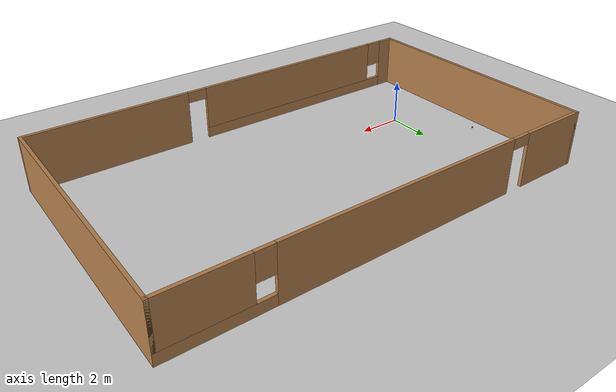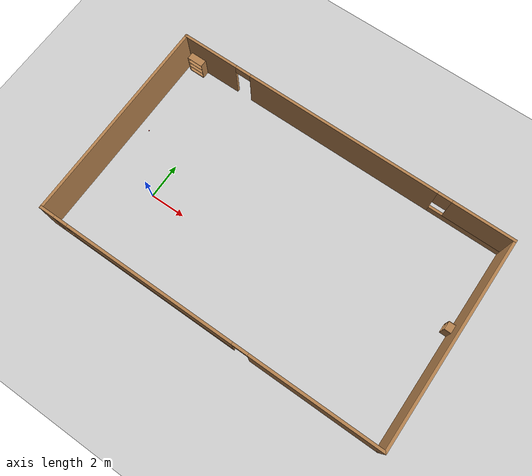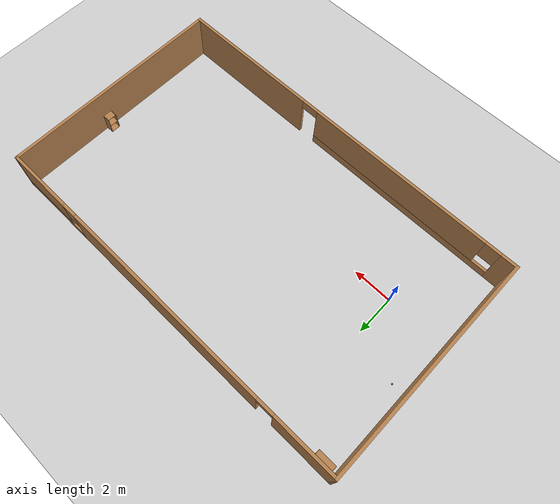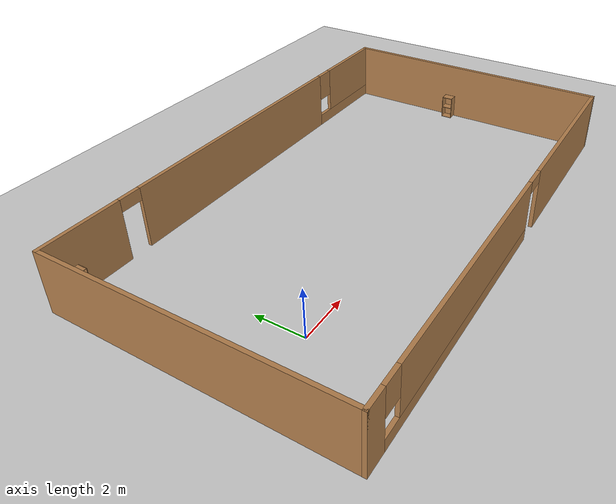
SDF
<sdf version="1.7">
 <world name="default">
  <light name="sun" type="directional">
   <pose>0 0 10 0 -0 0</pose>
   <diffuse>0.8 0.8 0.8 1</diffuse>
   <specular>0.2 0.2 0.2 1</specular>
   <attenuation>
    <range>1000</range>
    <constant>0.9</constant>
    <linear>0.01</linear>
    <quadratic>0.001</quadratic>
   </attenuation>
   <direction>-0.5 0.1 -0.9</direction>
   <spot><inner_angle>0</inner_angle><outer_angle>0</outer_angle><falloff>0</falloff></spot>
  </light>
  <model name="ground_plane">
   <static>1</static>
   <link name="link">
    <collision name="collision">
     <geometry><plane><normal>0 0 1</normal><size>100 100</size></plane></geometry>
     <surface>
      <contact><collide_bitmask>65535</collide_bitmask></contact>
      <friction><ode><mu>100</mu><mu2>50</mu2></ode></friction>
     </surface>
    </collision>
    <visual name="visual">
     <cast_shadows>0</cast_shadows>
     <geometry><plane><normal>0 0 1</normal><size>100 100</size></plane></geometry>
     <material>
      <script><uri>file://media/materials/scripts/gazebo.material</uri><name>Gazebo/Grey</name></script>
     </material>
    </visual>
   </link>
  </model>
  <gravity>0 0 -9.8</gravity>
  <magnetic_field>6e-06 2.3e-05 -4.2e-05</magnetic_field>
  <atmosphere type="adiabatic"/>
  <physics type="ode">
   <max_step_size>0.001</max_step_size>
   <real_time_factor>1</real_time_factor>
   <real_time_update_rate>1000</real_time_update_rate>
  </physics>
  <scene><ambient>0.4 0.4 0.4 1</ambient><background>0.7 0.7 0.7 1</background><shadows>1</shadows></scene>
  <audio><device>default</device></audio>
  <spherical_coordinates>
   <surface_model>EARTH_WGS84</surface_model>
   <latitude_deg>0</latitude_deg>
   <longitude_deg>0</longitude_deg>
   <elevation>0</elevation>
   <heading_deg>0</heading_deg>
  </spherical_coordinates>
  <model name="t1">
   <pose>6.66698 1.8068 0 0 -0 0</pose>
   <link name="Wall_0">
    <collision name="Wall_0_Collision">
     <geometry><box><size>11.75 0.15 2.5</size></box></geometry>
     <pose>0 0 1.25 0 -0 0</pose>
    </collision>
    <visual name="Wall_0_Visual">
     <pose>0 0 1.25 0 -0 0</pose>
     <geometry><box><size>11.75 0.15 2.5</size></box></geometry>
     <material>
      <script><uri>file://media/materials/scripts/gazebo.material</uri><name>Gazebo/Wood</name></script>
      <ambient>1 1 1 1</ambient>
     </material>
     <meta><layer>0</layer></meta>
    </visual>
    <pose>-9.8 0 0 0 -0 1.5708</pose>
   </link>
   <link name="Wall_2">
    <pose>-0 5.8 0 0 -0 0</pose>
    <visual name="Wall_2_Visual_0">
     <pose>-8.22504 0 1.25 0 -0 0</pose>
     <geometry><box><size>3.29991 0.15 2.5</size></box></geometry>
     <material>
      <script><uri>file://media/materials/scripts/gazebo.material</uri><name>Gazebo/Wood</name></script>
      <ambient>1 1 1 1</ambient>
     </material>
     <meta><layer>0</layer></meta>
    </visual>
    <collision name="Wall_2_Collision_0">
     <geometry><box><size>3.29991 0.15 2.5</size></box></geometry>
     <pose>-8.22504 0 1.25 0 -0 0</pose>
    </collision>
    <visual name="Wall_2_Visual_1">
     <pose>-0.066928 0 1.25 0 -0 0</pose>
     <geometry><box><size>11.2163 0.15 2.5</size></box></geometry>
     <material>
      <script><uri>file://media/materials/scripts/gazebo.material</uri><name>Gazebo/Wood</name></script>
      <ambient>1 1 1 1</ambient>
     </material>
     <meta><layer>0</layer></meta>
    </visual>
    <collision name="Wall_2_Collision_1">
     <geometry><box><size>11.2163 0.15 2.5</size></box></geometry>
     <pose>-0.066928 0 1.25 0 -0 0</pose>
    </collision>
    <visual name="Wall_2_Visual_2">
     <pose>5.54123 0 1.25 0 -0 0</pose>
     <geometry><box><size>0 0.15 2.5</size></box></geometry>
     <material>
      <script><uri>file://media/materials/scripts/gazebo.material</uri><name>Gazebo/Wood</name></script>
      <ambient>1 1 1 1</ambient>
     </material>
     <meta><layer>0</layer></meta>
    </visual>
    <collision name="Wall_2_Collision_2">
     <geometry><box><size>0 0.15 2.5</size></box></geometry>
     <pose>5.54123 0 1.25 0 -0 0</pose>
    </collision>
    <visual name="Wall_2_Visual_3">
     <pose>7.70812 0 0.25 0 -0 0</pose>
     <geometry><box><size>4.33377 0.15 0.5</size></box></geometry>
     <material>
      <script><uri>file://media/materials/scripts/gazebo.material</uri><name>Gazebo/Wood</name></script>
      <ambient>1 1 1 1</ambient>
     </material>
     <meta><layer>0</layer></meta>
    </visual>
    <collision name="Wall_2_Collision_3">
     <geometry><box><size>4.33377 0.15 0.5</size></box></geometry>
     <pose>7.70812 0 0.25 0 -0 0</pose>
    </collision>
    <visual name="Wall_2_Visual_4">
     <pose>8.10811 0 1.5 0 -0 0</pose>
     <geometry><box><size>3.53377 0.15 2</size></box></geometry>
     <material>
      <script><uri>file://media/materials/scripts/gazebo.material</uri><name>Gazebo/Wood</name></script>
      <ambient>1 1 1 1</ambient>
     </material>
     <meta><layer>0</layer></meta>
    </visual>
    <collision name="Wall_2_Collision_4">
     <geometry><box><size>3.53377 0.15 2</size></box></geometry>
     <pose>8.10811 0 1.5 0 -0 0</pose>
    </collision>
    <visual name="Wall_2_Visual_5">
     <pose>5.54123 0 1.9 0 -0 0</pose>
     <geometry><box><size>0 0.15 1.2</size></box></geometry>
     <material>
      <script><uri>file://media/materials/scripts/gazebo.material</uri><name>Gazebo/Wood</name></script>
      <ambient>1 1 1 1</ambient>
     </material>
     <meta><layer>0</layer></meta>
    </visual>
    <collision name="Wall_2_Collision_5">
     <geometry><box><size>0 0.15 1.2</size></box></geometry>
     <pose>5.54123 0 1.9 0 -0 0</pose>
    </collision>
    <visual name="Wall_2_Visual_6">
     <pose>5.94123 0 1.9 0 -0 0</pose>
     <geometry><box><size>0.8 0.15 1.2</size></box></geometry>
     <material>
      <script><uri>file://media/materials/scripts/gazebo.material</uri><name>Gazebo/Wood</name></script>
      <ambient>1 1 1 1</ambient>
     </material>
     <meta><layer>0</layer></meta>
    </visual>
    <collision name="Wall_2_Collision_6">
     <geometry><box><size>0.8 0.15 1.2</size></box></geometry>
     <pose>5.94123 0 1.9 0 -0 0</pose>
    </collision>
    <visual name="Wall_2_Visual_7">
     <pose>-6.12509 0 2.25 0 -0 0</pose>
     <geometry><box><size>0.9 0.15 0.5</size></box></geometry>
     <material>
      <script><uri>file://media/materials/scripts/gazebo.material</uri><name>Gazebo/Wood</name></script>
      <ambient>1 1 1 1</ambient>
     </material>
     <meta><layer>0</layer></meta>
    </visual>
    <collision name="Wall_2_Collision_7">
     <geometry><box><size>0.9 0.15 0.5</size></box></geometry>
     <pose>-6.12509 0 2.25 0 -0 0</pose>
    </collision>
   </link>
   <link name="Wall_3">
    <collision name="Wall_3_Collision">
     <geometry><box><size>11.75 0.15 2.5</size></box></geometry>
     <pose>0 0 1.25 0 -0 0</pose>
    </collision>
    <visual name="Wall_3_Visual">
     <pose>0 0 1.25 0 -0 0</pose>
     <geometry><box><size>11.75 0.15 2.5</size></box></geometry>
     <material>
      <script><uri>file://media/materials/scripts/gazebo.material</uri><name>Gazebo/Wood</name></script>
      <ambient>1 1 1 1</ambient>
     </material>
     <meta><layer>0</layer></meta>
    </visual>
    <pose>9.8 0 0 0 -0 -1.5708</pose>
   </link>
   <link name="Wall_5">
    <pose>-0 -5.8 0 0 -0 0</pose>
    <visual name="Wall_5_Visual_0">
     <pose>-9.4313 0 1.25 0 -0 0</pose>
     <geometry><box><size>0.8874 0.15 2.5</size></box></geometry>
     <material>
      <script><uri>file://media/materials/scripts/gazebo.material</uri><name>Gazebo/Wood</name></script>
      <ambient>1 1 1 1</ambient>
     </material>
     <meta><layer>0</layer></meta>
    </visual>
    <collision name="Wall_5_Collision_0">
     <geometry><box><size>0.8874 0.15 2.5</size></box></geometry>
     <pose>-9.4313 0 1.25 0 -0 0</pose>
    </collision>
    <visual name="Wall_5_Visual_1">
     <pose>6.18069 0 1.25 0 -0 0</pose>
     <geometry><box><size>7.38861 0.15 2.5</size></box></geometry>
     <material>
      <script><uri>file://media/materials/scripts/gazebo.material</uri><name>Gazebo/Wood</name></script>
      <ambient>1 1 1 1</ambient>
     </material>
     <meta><layer>0</layer></meta>
    </visual>
    <collision name="Wall_5_Collision_1">
     <geometry><box><size>7.38861 0.15 2.5</size></box></geometry>
     <pose>6.18069 0 1.25 0 -0 0</pose>
    </collision>
    <visual name="Wall_5_Visual_2">
     <pose>-3.70061 0 0.25 0 -0 0</pose>
     <geometry><box><size>10.574 0.15 0.5</size></box></geometry>
     <material>
      <script><uri>file://media/materials/scripts/gazebo.material</uri><name>Gazebo/Wood</name></script>
      <ambient>1 1 1 1</ambient>
     </material>
     <meta><layer>0</layer></meta>
    </visual>
    <collision name="Wall_5_Collision_2">
     <geometry><box><size>10.574 0.15 0.5</size></box></geometry>
     <pose>-3.70061 0 0.25 0 -0 0</pose>
    </collision>
    <visual name="Wall_5_Visual_3">
     <pose>-3.30061 0 1.5 0 -0 0</pose>
     <geometry><box><size>9.77399 0.15 2</size></box></geometry>
     <material>
      <script><uri>file://media/materials/scripts/gazebo.material</uri><name>Gazebo/Wood</name></script>
      <ambient>1 1 1 1</ambient>
     </material>
     <meta><layer>0</layer></meta>
    </visual>
    <collision name="Wall_5_Collision_3">
     <geometry><box><size>9.77399 0.15 2</size></box></geometry>
     <pose>-3.30061 0 1.5 0 -0 0</pose>
    </collision>
    <visual name="Wall_5_Visual_4">
     <pose>-8.5876 0 1.9 0 -0 0</pose>
     <geometry><box><size>0.8 0.15 1.2</size></box></geometry>
     <material>
      <script><uri>file://media/materials/scripts/gazebo.material</uri><name>Gazebo/Wood</name></script>
      <ambient>1 1 1 1</ambient>
     </material>
     <meta><layer>0</layer></meta>
    </visual>
    <collision name="Wall_5_Collision_4">
     <geometry><box><size>0.8 0.15 1.2</size></box></geometry>
     <pose>-8.5876 0 1.9 0 -0 0</pose>
    </collision>
    <visual name="Wall_5_Visual_5">
     <pose>2.03639 0 2.25 0 -0 0</pose>
     <geometry><box><size>0.9 0.15 0.5</size></box></geometry>
     <material>
      <script><uri>file://media/materials/scripts/gazebo.material</uri><name>Gazebo/Wood</name></script>
      <ambient>1 1 1 1</ambient>
     </material>
     <meta><layer>0</layer></meta>
    </visual>
    <collision name="Wall_5_Collision_5">
     <geometry><box><size>0.9 0.15 0.5</size></box></geometry>
     <pose>2.03639 0 2.25 0 -0 0</pose>
    </collision>
   </link>
   <static>1</static>
  </model>
  <model name="bookshelf">
   <static>1</static>
   <link name="link">
    <inertial><mass>1</mass></inertial>
    <collision name="back">
     <pose>0 0.005 0.6 0 -0 0</pose>
     <geometry><box><size>0.9 0.01 1.2</size></box></geometry>
    </collision>
    <visual name="visual1">
     <pose>0 0.005 0.6 0 -0 0</pose>
     <geometry><box><size>0.9 0.01 1.2</size></box></geometry>
     <material>
      <script><uri>file://media/materials/scripts/gazebo.material</uri><name>Gazebo/Wood</name></script>
     </material>
    </visual>
    <collision name="left_side">
     <pose>0.45 -0.195 0.6 0 -0 0</pose>
     <geometry><box><size>0.02 0.4 1.2</size></box></geometry>
    </collision>
    <visual name="visual2">
     <pose>0.45 -0.195 0.6 0 -0 0</pose>
     <geometry><box><size>0.02 0.4 1.2</size></box></geometry>
     <material>
      <script><uri>file://media/materials/scripts/gazebo.material</uri><name>Gazebo/Wood</name></script>
     </material>
    </visual>
    <collision name="right_side">
     <pose>-0.45 -0.195 0.6 0 -0 0</pose>
     <geometry><box><size>0.02 0.4 1.2</size></box></geometry>
    </collision>
    <visual name="visual3">
     <pose>-0.45 -0.195 0.6 0 -0 0</pose>
     <geometry><box><size>0.02 0.4 1.2</size></box></geometry>
     <material>
      <script><uri>file://media/materials/scripts/gazebo.material</uri><name>Gazebo/Wood</name></script>
     </material>
    </visual>
    <collision name="bottom">
     <pose>0 -0.195 0.03 0 -0 0</pose>
     <geometry><box><size>0.88 0.4 0.06</size></box></geometry>
    </collision>
    <visual name="visual4">
     <pose>0 -0.195 0.03 0 -0 0</pose>
     <geometry><box><size>0.88 0.4 0.06</size></box></geometry>
     <material>
      <script><uri>file://media/materials/scripts/gazebo.material</uri><name>Gazebo/Wood</name></script>
     </material>
    </visual>
    <collision name="top">
     <pose>0 -0.195 1.19 0 -0 0</pose>
     <geometry><box><size>0.88 0.4 0.02</size></box></geometry>
    </collision>
    <visual name="visual5">
     <pose>0 -0.195 1.19 0 -0 0</pose>
     <geometry><box><size>0.88 0.4 0.02</size></box></geometry>
     <material>
      <script><uri>file://media/materials/scripts/gazebo.material</uri><name>Gazebo/Wood</name></script>
     </material>
    </visual>
    <collision name="low_shelf">
     <pose>0 -0.195 0.43 0 -0 0</pose>
     <geometry><box><size>0.88 0.4 0.02</size></box></geometry>
    </collision>
    <visual name="visual6">
     <pose>0 -0.195 0.43 0 -0 0</pose>
     <geometry><box><size>0.88 0.4 0.02</size></box></geometry>
     <material>
      <script><uri>file://media/materials/scripts/gazebo.material</uri><name>Gazebo/Wood</name></script>
     </material>
    </visual>
    <collision name="high_shelf">
     <pose>0 -0.195 0.8 0 -0 0</pose>
     <geometry><box><size>0.88 0.4 0.02</size></box></geometry>
    </collision>
    <visual name="visual7">
     <pose>0 -0.195 0.8 0 -0 0</pose>
     <geometry><box><size>0.88 0.4 0.02</size></box></geometry>
     <material>
      <script><uri>file://media/materials/scripts/gazebo.material</uri><name>Gazebo/Wood</name></script>
     </material>
    </visual>
   </link>
   <pose>-2.4402 7.52138 0 0 -0 0</pose>
  </model>
  <model name="cabinet">
   <static>1</static>
   <link name="cabinet_bottom_plate">
    <inertial>
     <pose>0 0 -1 0 -0 0</pose>
     <inertia><ixx>2.05</ixx><ixy>0</ixy><ixz>0</ixz><iyy>2.05</iyy><iyz>0</iyz><izz>2.05</izz></inertia>
     <mass>25</mass>
    </inertial>
    <collision name="cabinet_bottom_plate_geom">
     <pose>0 0 0.01 0 -0 0</pose>
     <geometry><box><size>0.45 0.45 0.02</size></box></geometry>
    </collision>
    <visual name="cabinet_bottom_plate_geom_visual">
     <pose>0 0 0.01 0 -0 0</pose>
     <geometry><box><size>0.45 0.45 0.02</size></box></geometry>
     <material>
      <script><uri>file://media/materials/scripts/gazebo.material</uri><name>Gazebo/Wood</name></script>
     </material>
    </visual>
    <collision name="cabinet_bottom_plate_geom_cabinet_back_plate">
     <pose>0.235 0 0.51 0 -0 0</pose>
     <geometry><box><size>0.02 0.45 1.02</size></box></geometry>
    </collision>
    <visual name="cabinet_bottom_plate_geom_cabinet_back_plate_visual">
     <pose>0.235 0 0.51 0 -0 0</pose>
     <geometry><box><size>0.02 0.45 1.02</size></box></geometry>
     <material>
      <script><uri>file://media/materials/scripts/gazebo.material</uri><name>Gazebo/Wood</name></script>
     </material>
    </visual>
    <collision name="cabinet_bottom_plate_geom_cabinet_left_plate">
     <pose>0 0.235 0.51 0 -0 0</pose>
     <geometry><box><size>0.45 0.02 1.02</size></box></geometry>
    </collision>
    <visual name="cabinet_bottom_plate_geom_cabinet_left_plate_visual">
     <pose>0 0.235 0.51 0 -0 0</pose>
     <geometry><box><size>0.45 0.02 1.02</size></box></geometry>
     <material>
      <script><uri>file://media/materials/scripts/gazebo.material</uri><name>Gazebo/Wood</name></script>
     </material>
    </visual>
    <collision name="cabinet_bottom_plate_geom_cabinet_middle_plate">
     <pose>0 0 0.51 0 -0 0</pose>
     <geometry><box><size>0.45 0.45 0.02</size></box></geometry>
    </collision>
    <visual name="cabinet_bottom_plate_geom_cabinet_middle_plate_visual">
     <pose>0 0 0.51 0 -0 0</pose>
     <geometry><box><size>0.45 0.45 0.02</size></box></geometry>
     <material>
      <script><uri>file://media/materials/scripts/gazebo.material</uri><name>Gazebo/Wood</name></script>
     </material>
    </visual>
    <collision name="cabinet_bottom_plate_geom_cabinet_right_plate">
     <pose>0 -0.235 0.51 0 -0 0</pose>
     <geometry><box><size>0.45 0.02 1.02</size></box></geometry>
    </collision>
    <visual name="cabinet_bottom_plate_geom_cabinet_right_plate_visual">
     <pose>0 -0.235 0.51 0 -0 0</pose>
     <geometry><box><size>0.45 0.02 1.02</size></box></geometry>
     <material>
      <script><uri>file://media/materials/scripts/gazebo.material</uri><name>Gazebo/Wood</name></script>
     </material>
    </visual>
    <collision name="cabinet_bottom_plate_geom_cabinet_top_plate">
     <pose>0 0 1.01 0 -0 0</pose>
     <geometry><box><size>0.45 0.45 0.02</size></box></geometry>
    </collision>
    <visual name="cabinet_bottom_plate_geom_cabinet_top_plate_visual">
     <pose>0 0 1.01 0 -0 0</pose>
     <geometry><box><size>0.45 0.45 0.02</size></box></geometry>
     <material>
      <script><uri>file://media/materials/scripts/gazebo.material</uri><name>Gazebo/Wood</name></script>
     </material>
    </visual>
   </link>
   <pose>16.243 2.68234 0 0 -0 0</pose>
  </model>
  <model name="cricket_ball">
   <link name="link">
    <pose>0 0 0.0375 0 -0 0</pose>
    <inertial>
     <mass>0.1467</mass>
     <inertia>
      <ixx>8.25187e-05</ixx>
      <ixy>0</ixy>
      <ixz>0</ixz>
      <iyy>8.25187e-05</iyy>
      <iyz>0</iyz>
      <izz>8.25187e-05</izz>
     </inertia>
    </inertial>
    <collision name="collision">
     <geometry><sphere><radius>0.0375</radius></sphere></geometry>
     <surface>
      <contact>
       <poissons_ratio>0.347</poissons_ratio>
       <elastic_modulus>8.8e+09</elastic_modulus>
       <ode><kp>100000</kp><kd>100</kd><max_vel>100</max_vel><min_depth>0.001</min_depth></ode>
      </contact>
      <friction>
       <torsional>
        <coefficient>1</coefficient>
        <use_patch_radius>0</use_patch_radius>
        <surface_radius>0.01</surface_radius>
       </torsional>
      </friction>
     </surface>
    </collision>
    <visual name="visual">
     <geometry><sphere><radius>0.0375</radius></sphere></geometry>
     <material>
      <script><uri>file://media/materials/scripts/gazebo.material</uri><name>Gazebo/Red</name></script>
     </material>
    </visual>
    <velocity_decay><linear>0</linear><angular>0.005</angular></velocity_decay>
   </link>
   <pose>-2.46823 2.83856 -0.001014 0 -0 0</pose>
  </model>
 </world>
</sdf>
